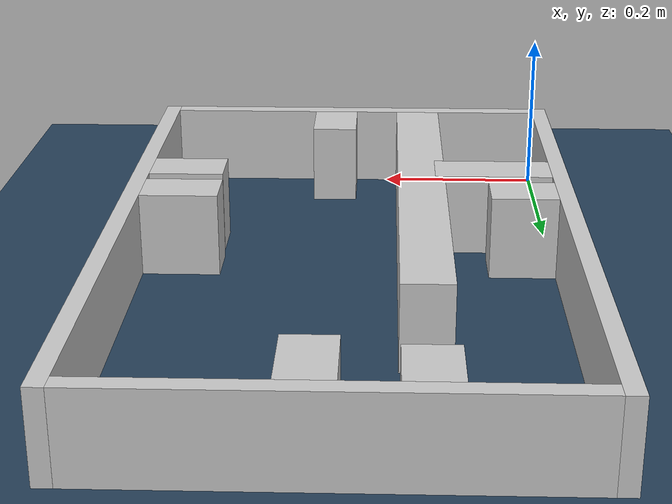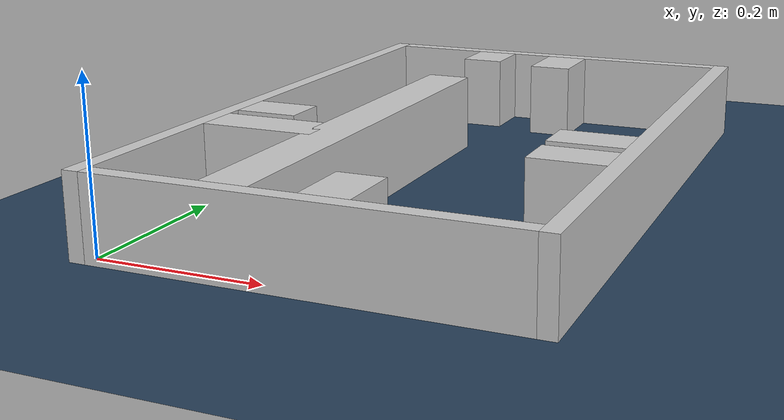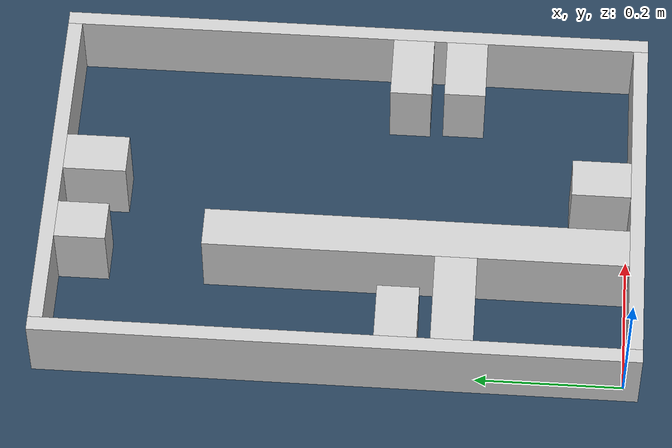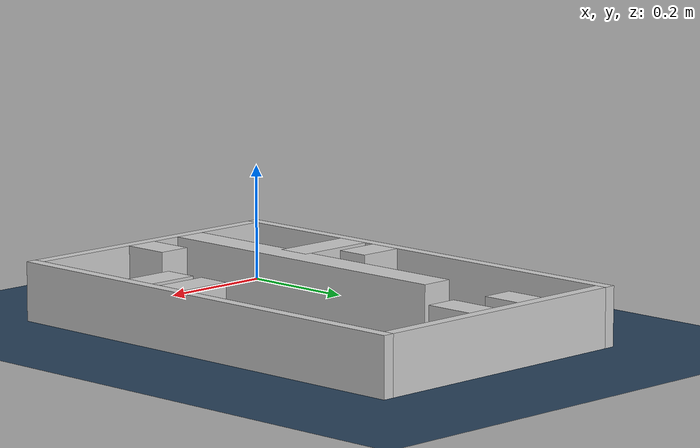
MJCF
<?xml version="1.0" ?>
<mujoco model="generated_real_template">
  <compiler angle="degree"/>
  <option timestep="0.002" integrator="implicitfast" iterations="100" cone="elliptic"/>
  <default>
    <geom density="1"/>
  </default>
  <asset>
    <texture builtin="gradient" height="3072" rgb1="0.3 0.5 0.7" rgb2="0 0 0" type="skybox" width="512"/>
    <texture builtin="checker" height="300" mark="edge" markrgb="0.8 0.8 0.8" name="groundplane" rgb1="0.2 0.3 0.4" rgb2="0.1 0.2 0.3" type="2d" width="300"/>
    <material name="groundplane" reflectance="0.2" texrepeat="5 5" texture="groundplane" texuniform="true"/>
  </asset>
  <worldbody>
    <light dir="0 0 -1" directional="true" pos="0 0 1.5"/>
    <geom name="floor" type="plane" condim="4" friction="0.5 0.005 0.001" material="groundplane" size="0 0 0.05"/>
    <body name="walls">
      <geom name="wall_boundary_left" type="box" condim="4" friction="1.0 0.005 0.0001" rgba="0.8 0.8 0.8 1" pos="-0.010000 0.387500 0.050000" euler="0 0 0.000000" size="0.010000 0.407500 0.050000"/>
      <geom name="wall_boundary_right" type="box" condim="4" friction="1.0 0.005 0.0001" rgba="0.8 0.8 0.8 1" pos="0.500000 0.387500 0.050000" euler="0 0 0.000000" size="0.010000 0.407500 0.050000"/>
      <geom name="wall_boundary_bottom" type="box" condim="4" friction="1.0 0.005 0.0001" rgba="0.8 0.8 0.8 1" pos="0.245000 -0.010000 0.050000" euler="0 0 0.000000" size="0.245000 0.010000 0.050000"/>
      <geom name="wall_boundary_top" type="box" condim="4" friction="1.0 0.005 0.0001" rgba="0.8 0.8 0.8 1" pos="0.245000 0.785000 0.050000" euler="0 0 0.000000" size="0.245000 0.010000 0.050000"/>
      <geom name="wall_inner_1_1" type="box" condim="4" friction="1.0 0.005 0.0001" rgba="0.8 0.8 0.8 1" pos="0.270454 0.040089 0.050000" euler="0 0 90.000000" size="0.040089 0.028500 0.050000"/>
      <geom name="wall_inner_1_2" type="box" condim="4" friction="1.0 0.005 0.0001" rgba="0.8 0.8 0.8 1" pos="0.270454 0.731895 0.050000" euler="0 0 90.000000" size="0.043105 0.028500 0.050000"/>
      <geom name="wall_inner_2_1" type="box" condim="4" friction="1.0 0.005 0.0001" rgba="0.8 0.8 0.8 1" pos="0.070816 0.232432 0.050000" euler="0 0 0.000000" size="0.070816 0.028500 0.050000"/>
      <geom name="wall_inner_2_2" type="box" condim="4" friction="1.0 0.005 0.0001" rgba="0.8 0.8 0.8 1" pos="0.444991 0.232432 0.050000" euler="0 0 0.000000" size="0.045009 0.028500 0.050000"/>
      <geom name="wall_inner_3_1" type="box" condim="4" friction="1.0 0.005 0.0001" rgba="0.8 0.8 0.8 1" pos="0.158624 0.287656 0.050000" euler="0 0 90.000000" size="0.287656 0.028500 0.050000"/>
      <geom name="wall_inner_3_2" type="box" condim="4" friction="1.0 0.005 0.0001" rgba="0.8 0.8 0.8 1" pos="0.158624 0.740286 0.050000" euler="0 0 90.000000" size="0.034714 0.028500 0.050000"/>
      <geom name="wall_inner_4_1" type="box" condim="4" friction="1.0 0.005 0.0001" rgba="0.8 0.8 0.8 1" pos="0.039382 0.307337 0.050000" euler="0 0 0.000000" size="0.039382 0.028500 0.050000"/>
      <geom name="wall_inner_4_2" type="box" condim="4" friction="1.0 0.005 0.0001" rgba="0.8 0.8 0.8 1" pos="0.443950 0.307337 0.050000" euler="0 0 0.000000" size="0.046050 0.028500 0.050000"/>
    </body>
  </worldbody>
</mujoco>
